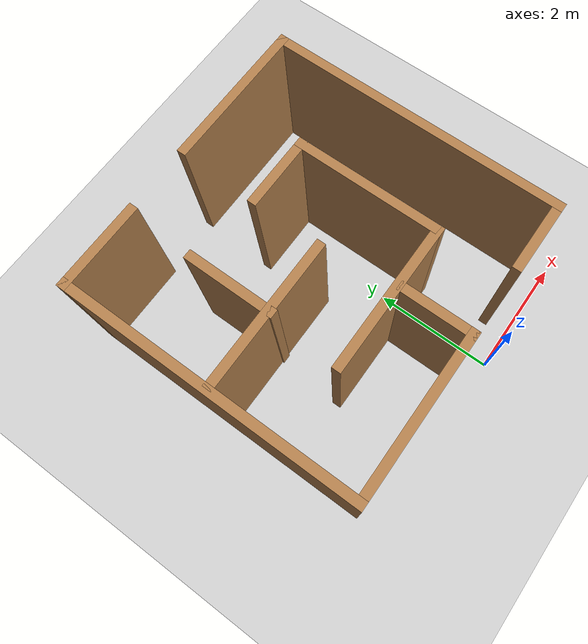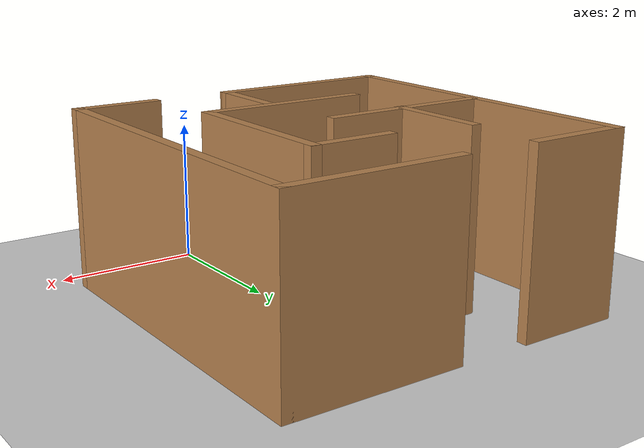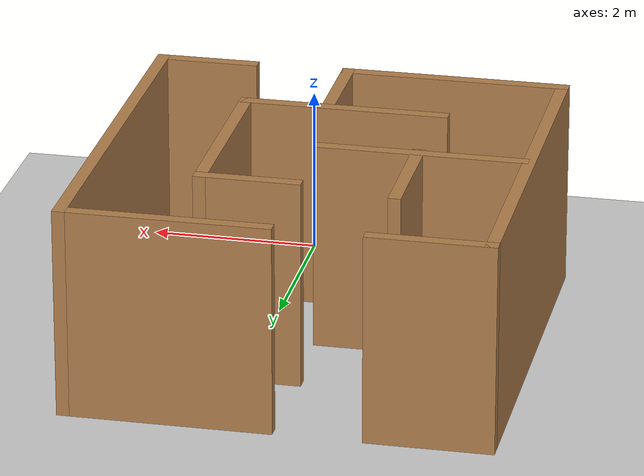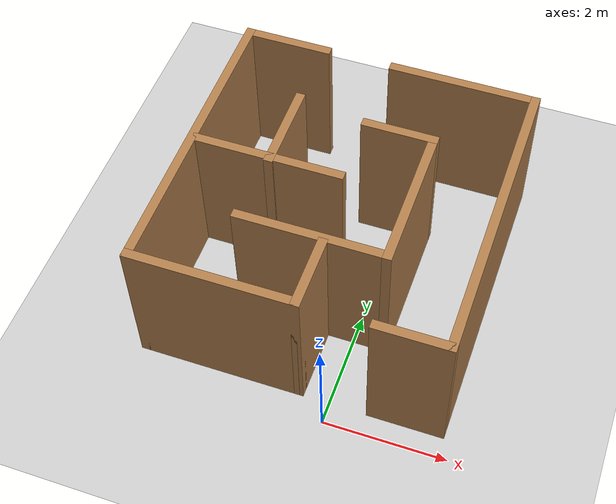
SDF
<sdf version="1.6">
 <world name="default">
  <light name="sun" type="directional">
   <pose>0 0 10 0 -0 0</pose>
   <diffuse>0.8 0.8 0.8 1</diffuse>
   <specular>0.1 0.1 0.1 1</specular>
   <attenuation>
    <range>1000</range>
    <constant>0.9</constant>
    <linear>0.01</linear>
    <quadratic>0.001</quadratic>
   </attenuation>
   <direction>-0.5 0.5 -1</direction>
  </light>
  <model name="ground_plane">
   <static>1</static>
   <link name="link">
    <collision name="collision">
     <geometry><plane><normal>0 0 1</normal><size>100 100</size></plane></geometry>
     <surface><friction><ode><mu>100</mu><mu2>50</mu2></ode></friction></surface>
    </collision>
    <visual name="visual">
     <cast_shadows>0</cast_shadows>
     <geometry><plane><normal>0 0 1</normal><size>100 100</size></plane></geometry>
     <material>
      <script><uri>file://media/materials/scripts/gazebo.material</uri><name>Gazebo/Grey</name></script>
     </material>
    </visual>
   </link>
  </model>
  <gravity>0 0 -9.8</gravity>
  <magnetic_field>6e-06 2.3e-05 -4.2e-05</magnetic_field>
  <atmosphere type="adiabatic"/>
  <physics name="default_physics" default="0" type="ode">
   <max_step_size>0.001</max_step_size>
   <real_time_factor>1</real_time_factor>
   <real_time_update_rate>1000</real_time_update_rate>
  </physics>
  <scene><ambient>0.4 0.4 0.4 1</ambient><background>0.7 0.7 0.7 1</background><shadows>1</shadows></scene>
  <spherical_coordinates>
   <surface_model>EARTH_WGS84</surface_model>
   <latitude_deg>0</latitude_deg>
   <longitude_deg>0</longitude_deg>
   <elevation>0</elevation>
   <heading_deg>0</heading_deg>
  </spherical_coordinates>
  <model name="4by4">
   <pose>-0.662571 2.83794 0 0 -0 0</pose>
   <link name="Wall_0">
    <collision name="Wall_0_Collision">
     <geometry><box><size>1.5 0.15 2.5</size></box></geometry>
     <pose>0 0 1.25 0 -0 0</pose>
    </collision>
    <visual name="Wall_0_Visual">
     <pose>0 0 1.25 0 -0 0</pose>
     <geometry><box><size>1.5 0.15 2.5</size></box></geometry>
     <material>
      <script><uri>file://media/materials/scripts/gazebo.material</uri><name>Gazebo/Wood</name></script>
      <ambient>1 1 1 1</ambient>
     </material>
    </visual>
    <pose>-1.76351 2.425 0 0 -0 3.14159</pose>
   </link>
   <link name="Wall_1">
    <collision name="Wall_1_Collision">
     <geometry><box><size>5 0.15 2.5</size></box></geometry>
     <pose>0 0 1.25 0 -0 0</pose>
    </collision>
    <visual name="Wall_1_Visual">
     <pose>0 0 1.25 0 -0 0</pose>
     <geometry><box><size>5 0.15 2.5</size></box></geometry>
     <material>
      <script><uri>file://media/materials/scripts/gazebo.material</uri><name>Gazebo/Wood</name></script>
      <ambient>1 1 1 1</ambient>
     </material>
    </visual>
    <pose>-2.43851 0 0 0 0 -1.5708</pose>
   </link>
   <link name="Wall_11">
    <collision name="Wall_11_Collision">
     <geometry><box><size>2.5 0.15 2.5</size></box></geometry>
     <pose>0 0 1.25 0 -0 0</pose>
    </collision>
    <visual name="Wall_11_Visual">
     <pose>0 0 1.25 0 -0 0</pose>
     <geometry><box><size>2.5 0.15 2.5</size></box></geometry>
     <material>
      <script><uri>file://media/materials/scripts/gazebo.material</uri><name>Gazebo/Wood</name></script>
      <ambient>1 1 1 1</ambient>
     </material>
    </visual>
    <pose>-0.032537 -1.23832 0 0 -0 0</pose>
   </link>
   <link name="Wall_12">
    <collision name="Wall_12_Collision">
     <geometry><box><size>2.5 0.15 2.5</size></box></geometry>
     <pose>0 0 1.25 0 -0 0</pose>
    </collision>
    <visual name="Wall_12_Visual">
     <pose>0 0 1.25 0 -0 0</pose>
     <geometry><box><size>2.5 0.15 2.5</size></box></geometry>
     <material>
      <script><uri>file://media/materials/scripts/gazebo.material</uri><name>Gazebo/Wood</name></script>
      <ambient>1 1 1 1</ambient>
     </material>
    </visual>
    <pose>1.14246 -0.063325 0 0 -0 1.5708</pose>
   </link>
   <link name="Wall_13">
    <collision name="Wall_13_Collision">
     <geometry><box><size>1.25 0.15 2.5</size></box></geometry>
     <pose>0 0 1.25 0 -0 0</pose>
    </collision>
    <visual name="Wall_13_Visual">
     <pose>0 0 1.25 0 -0 0</pose>
     <geometry><box><size>1.25 0.15 2.5</size></box></geometry>
     <material>
      <script><uri>file://media/materials/scripts/gazebo.material</uri><name>Gazebo/Wood</name></script>
      <ambient>1 1 1 1</ambient>
     </material>
    </visual>
    <pose>0.592463 1.11167 0 0 -0 3.14159</pose>
   </link>
   <link name="Wall_15">
    <collision name="Wall_15_Collision">
     <geometry><box><size>1.5 0.15 2.5</size></box></geometry>
     <pose>0 0 1.25 0 -0 0</pose>
    </collision>
    <visual name="Wall_15_Visual">
     <pose>0 0 1.25 0 -0 0</pose>
     <geometry><box><size>1.5 0.15 2.5</size></box></geometry>
     <material>
      <script><uri>file://media/materials/scripts/gazebo.material</uri><name>Gazebo/Wood</name></script>
      <ambient>1 1 1 1</ambient>
     </material>
    </visual>
    <pose>-1.14141 0.61265 0 0 0 -1.5708</pose>
   </link>
   <link name="Wall_2">
    <collision name="Wall_2_Collision">
     <geometry><box><size>2.75 0.15 2.5</size></box></geometry>
     <pose>0 0 1.25 0 -0 0</pose>
    </collision>
    <visual name="Wall_2_Visual">
     <pose>0 0 1.25 0 -0 0</pose>
     <geometry><box><size>2.75 0.15 2.5</size></box></geometry>
     <material>
      <script><uri>file://media/materials/scripts/gazebo.material</uri><name>Gazebo/Wood</name></script>
      <ambient>1 1 1 1</ambient>
     </material>
    </visual>
    <pose>-1.13851 -2.425 0 0 -0 0</pose>
   </link>
   <link name="Wall_3">
    <collision name="Wall_3_Collision">
     <geometry><box><size>1.25 0.15 2.5</size></box></geometry>
     <pose>0 0 1.25 0 -0 0</pose>
    </collision>
    <visual name="Wall_3_Visual">
     <pose>0 0 1.25 0 -0 0</pose>
     <geometry><box><size>1.25 0.15 2.5</size></box></geometry>
     <material>
      <script><uri>file://media/materials/scripts/gazebo.material</uri><name>Gazebo/Wood</name></script>
      <ambient>1 1 1 1</ambient>
     </material>
    </visual>
    <pose>0.161488 -1.875 0 0 -0 1.5708</pose>
   </link>
   <link name="Wall_5">
    <collision name="Wall_5_Collision">
     <geometry><box><size>2.5 0.15 2.5</size></box></geometry>
     <pose>0 0 1.25 0 -0 0</pose>
    </collision>
    <visual name="Wall_5_Visual">
     <pose>0 0 1.25 0 -0 0</pose>
     <geometry><box><size>2.5 0.15 2.5</size></box></geometry>
     <material>
      <script><uri>file://media/materials/scripts/gazebo.material</uri><name>Gazebo/Wood</name></script>
      <ambient>1 1 1 1</ambient>
     </material>
    </visual>
    <pose>1.26351 2.425 0 0 -0 0</pose>
   </link>
   <link name="Wall_6">
    <collision name="Wall_6_Collision">
     <geometry><box><size>5 0.15 2.5</size></box></geometry>
     <pose>0 0 1.25 0 -0 0</pose>
    </collision>
    <visual name="Wall_6_Visual">
     <pose>0 0 1.25 0 -0 0</pose>
     <geometry><box><size>5 0.15 2.5</size></box></geometry>
     <material>
      <script><uri>file://media/materials/scripts/gazebo.material</uri><name>Gazebo/Wood</name></script>
      <ambient>1 1 1 1</ambient>
     </material>
    </visual>
    <pose>2.43851 0 0 0 0 -1.5708</pose>
   </link>
   <link name="Wall_7">
    <collision name="Wall_7_Collision">
     <geometry><box><size>1.25 0.15 2.5</size></box></geometry>
     <pose>0 0 1.25 0 -0 0</pose>
    </collision>
    <visual name="Wall_7_Visual">
     <pose>0 0 1.25 0 -0 0</pose>
     <geometry><box><size>1.25 0.15 2.5</size></box></geometry>
     <material>
      <script><uri>file://media/materials/scripts/gazebo.material</uri><name>Gazebo/Wood</name></script>
      <ambient>1 1 1 1</ambient>
     </material>
    </visual>
    <pose>1.88851 -2.425 0 0 -0 3.14159</pose>
   </link>
   <link name="Wall_9">
    <collision name="Wall_9_Collision">
     <geometry><box><size>2.5 0.15 2.5</size></box></geometry>
     <pose>0 0 1.25 0 -0 0</pose>
    </collision>
    <visual name="Wall_9_Visual">
     <pose>0 0 1.25 0 -0 0</pose>
     <geometry><box><size>2.5 0.15 2.5</size></box></geometry>
     <material>
      <script><uri>file://media/materials/scripts/gazebo.material</uri><name>Gazebo/Wood</name></script>
      <ambient>1 1 1 1</ambient>
     </material>
    </visual>
    <pose>-1.18311 -0.03485 0 0 -0 0</pose>
   </link>
   <static>1</static>
  </model>
 </world>
</sdf>
